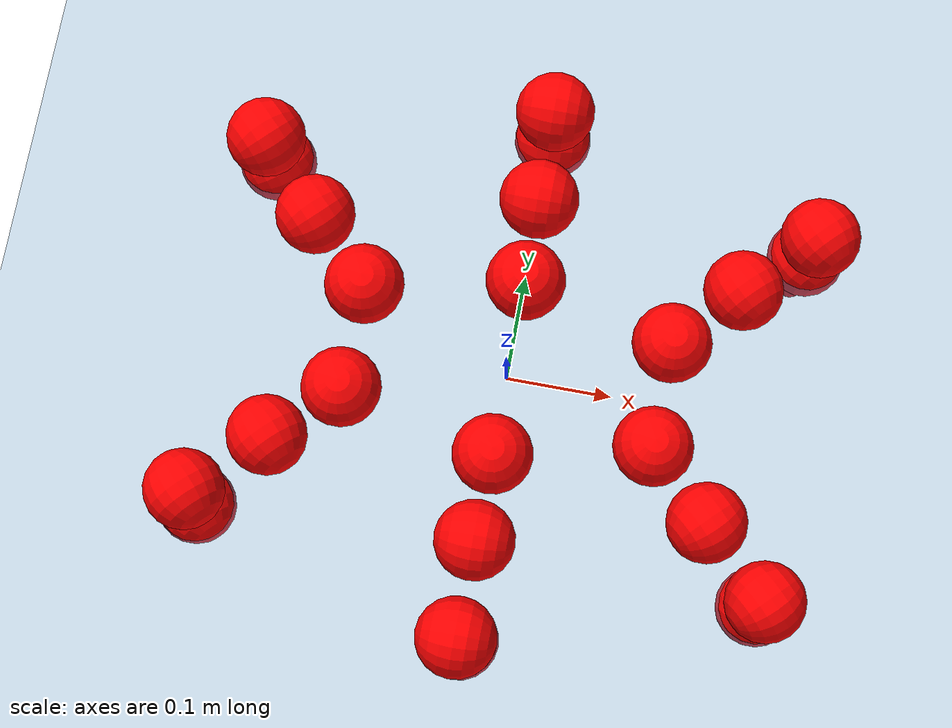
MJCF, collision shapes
<mujoco model="Golem">
  <compiler angle="radian" assetdir="assets" balanceinertia="true" inertiafromgeom="false"/>

  <option timestep="0.005" density="1.2" viscosity="2e-05"/>

  <size nkey="1"/>

  <visual>
    <quality shadowsize="8192"/>
    <map shadowclip="0.5"/>
  </visual>

  <default>
    <default class="/">
      <joint armature="0.01" damping="0.01" frictionloss="0.01"/>
      <geom contype="0" conaffinity="0" group="1" solref="-1000 -80"/>
      <site size="0.01 0.005 0.005" group="5"/>
      <general forcelimited="true" biastype="affine" gainprm="25" biasprm="0 -25 -0.5"/>
      <default class="visual">
        <geom type="mesh" group="2"/>
      </default>
      <default class="collision">
        <geom group="3"/>
      </default>
      <default class="foot">
        <geom size="0.01 0 0" condim="6" group="4" priority="1" solimp="0.015 1 0.01"/>
      </default>
      <default class="reward_collision_sphere">
        <geom group="5" rgba="1 0 0 1"/>
      </default>
    </default>
  </default>

  <asset>
    <texture type="skybox" colorspace="auto" name="//unnamed_texture_0" builtin="gradient" rgb1="0.95 0.95 0.95" rgb2="0.95 0.95 0.95" width="100" height="600"/>
    <texture type="2d" colorspace="auto" name="texplane" builtin="checker" rgb1="0.345 0.575 0.748" rgb2="0.345 0.575 0.748" markrgb="1 1 1" width="512" height="512"/>
    <material name="MatPlane" class="/" texture="texplane" texuniform="true" texrepeat="2 2" specular="0.9"/>
    <mesh name="body" class="/" file="body.stl" scale="0.001 0.001 0.001"/>
    <mesh name="coxa" class="/" file="coxa.stl" scale="0.001 0.001 0.001"/>
    <mesh name="femur" class="/" file="femur.stl" scale="0.001 0.001 0.001"/>
    <mesh name="tibia" class="/" file="tibia.stl" scale="0.001 0.001 0.001"/>
    <mesh name="tarsus" class="/" file="tarsus.stl" scale="0.001 0.001 0.001"/>
  </asset>

  <worldbody>
    <geom name="floor" class="/" size="100 100 0.125" type="plane" group="0" material="MatPlane"/>
    <light name="toplight_shadow" class="/" pos="0 0 5" dir="0.0990148 0.0990148 -0.990148" type="directional" ambient="0.04 0.04 0.04" diffuse="0.55 0.55 0.55" specular="0.12 0.12 0.12"/>
    <light name="toplight_fill" class="/" pos="0 0 5" dir="0.0990148 0.0990148 -0.990148" type="directional" castshadow="false" ambient="0.04 0.04 0.04" diffuse="0.3 0.3 0.3" specular="0.08 0.08 0.08"/>
    <body name="trunk" pos="9.64201e-05 0.00106273 -0.00207723" quat="0.999999 -0.000415957 -0.00040468 -0.00119485">
      <inertial pos="0.000843098 -0.000760654 -0.00185318" quat="0.999999 -0.00123803 -0.000547169 7.11291e-05" mass="2.80528" diaginertia="0.00639953 0.00360744 0.0123468"/>
      <joint name="//unnamed_joint_0" type="free"/>
      <geom name="//unnamed_geom_1" class="/" pos="0 0 0.0667498" quat="1 0 0 0" type="mesh" rgba="0.9 0.9 0.9 1" mesh="body"/>
      <site name="imu" class="/" pos="0.122595 0.013545 0.117024" size="0.00925652"/>
      <camera name="track" class="/" pos="0 -1.63987 0" quat="0.707107 0.707107 0 0" mode="trackcom"/>
      <camera name="ego_camera" class="/" pos="0.118827 0 0.104297" quat="-0.5 -0.5 0.5 0.5"/>
      <body name="coxa_RR" pos="-0.16399 -0.0679452 0.0684681" quat="0.381998 0.000966911 0.000145298 -0.924163">
        <inertial pos="0.00251197 -0.000298085 -0.00134361" quat="0.999995 0.00277543 0.00135496 0.000966227" mass="0.165537" diaginertia="0.0064829 0.00386785 0.012813"/>
        <joint name="coxa_joint_RR" class="/" pos="0 0 0" axis="-0.00233962 -0.00412941 -0.999989" range="-3.12786 3.14719" armature="0.00862586" damping="0" frictionloss="0.00931785"/>
        <geom name="//unnamed_geom_2" class="/" type="mesh" rgba="0.2 0.2 0.2 1" mesh="coxa"/>
        <geom name="//unnamed_geom_3" class="reward_collision_sphere" size="0.0370261" pos="-0.0274216 0 0"/>
        <body name="femur_RR" pos="0.0524094 -0.000828173 0.00174454" quat="0.500373 -0.500523 0.498841 0.500261">
          <inertial pos="-0.000283083 0.00256183 0.00141858" quat="0.999951 0.00635097 -0.00650405 0.00402869" mass="0.152835" diaginertia="0.00629669 0.00353817 0.0118861"/>
          <joint name="femur_joint_RR" class="/" pos="0 0 0" axis="0.0037784 -0.0018078 -0.999991" stiffness="0.000523284" range="-3.14537 3.14443" armature="0.010482" damping="0.00339285" frictionloss="0.00921064"/>
          <geom name="//unnamed_geom_4" class="/" type="mesh" rgba="0.9 0.9 0.9 1" mesh="femur"/>
          <geom name="//unnamed_geom_5" class="reward_collision_sphere" size="0.0370261"/>
          <body name="tibia_RR" pos="-0.0023109 -0.088041 -0.000378" quat="3.62657e-05 1 -0.000120697 -9.56624e-05">
            <inertial pos="-0.000261403 0.00282534 -0.00102021" quat="1 -0.000503859 -0.000312964 1.92135e-05" mass="0.152945" diaginertia="0.00617114 0.00357026 0.0120226"/>
            <joint name="tibia_joint_RR" class="/" pos="0 0 0" axis="-0.008828 -0.0115187 0.999895" range="-3.08523 3.11883" armature="0.00845004" damping="0.00581586" frictionloss="0.0103633"/>
            <geom name="//unnamed_geom_6" class="/" type="mesh" rgba="0.2 0.2 0.2 1" mesh="tibia"/>
            <geom name="//unnamed_geom_7" class="reward_collision_sphere" size="0.0370261"/>
            <body name="tarsus_RR" pos="0.0801075 0.00285815 -0.00244874" quat="1 -8.12336e-05 4.73806e-05 -0.00075018">
              <inertial pos="0.056063 0.00143902 0.00239971" quat="0.499842 0.495538 0.501477 0.50311" mass="0.152986" diaginertia="0.00607789 0.00360587 0.0122738"/>
              <joint name="tarsus_joint_RR" class="/" pos="0 0 0" axis="-0.007713 -0.00916089 0.999928" range="-3.17004 3.14635" armature="0.00935374" damping="0.0094918" frictionloss="0.00884552"/>
              <geom name="//unnamed_geom_8" class="/" type="mesh" rgba="0.9 0.9 0.9 1" mesh="tarsus"/>
              <geom name="foot_1" class="foot" size="0.00832849" pos="0.102374 0 0" quat="0 -0.707107 0 0.707107"/>
              <geom name="//unnamed_geom_10" class="reward_collision_sphere" size="0.0370261"/>
              <geom name="//unnamed_geom_11" class="reward_collision_sphere" size="0.0138848" pos="0.0982607 0 0"/>
              <site name="foot_1" class="foot" pos="0.102374 0 0" quat="0 -0.707107 0 0.707107" size="0.00925652"/>
            </body>
          </body>
        </body>
      </body>
      <body name="coxa_RM" pos="0.00225268 -0.111534 0.0691816" quat="0.70698 -0.000471598 -5.29077e-05 -0.707233">
        <inertial pos="-0.000342813 -5.1622e-05 -0.00254488" quat="0.999918 -0.00371472 -0.0114075 -0.00440327" mass="0.161256" diaginertia="0.00658609 0.00395232 0.0131362"/>
        <joint name="coxa_joint_RM" class="/" pos="0 0 0" axis="0.0110109 -0.000581183 -0.999939" range="-3.14154 3.11096" armature="0.00957995" damping="0.00944235" frictionloss="0.0102435"/>
        <geom name="//unnamed_geom_12" class="/" type="mesh" rgba="0.2 0.2 0.2 1" mesh="coxa"/>
        <geom name="//unnamed_geom_13" class="reward_collision_sphere" size="0.0370261" pos="-0.0274216 0 0"/>
        <body name="femur_RM" pos="0.0520251 -0.00144404 -0.000499513" quat="0.499605 -0.500276 0.500012 0.500107">
          <inertial pos="0.000380897 0.00224743 0.000293728" quat="0.999986 0.00520847 -0.000847632 0.00036641" mass="0.160895" diaginertia="0.00614004 0.00366852 0.0121254"/>
          <joint name="femur_joint_RM" class="/" pos="0 0 0" axis="0.00128412 -0.000185738 -0.999999" range="-3.08685 3.16189" armature="0.0103801" damping="0.0145105" frictionloss="0.0105343"/>
          <geom name="//unnamed_geom_14" class="/" type="mesh" rgba="0.9 0.9 0.9 1" mesh="femur"/>
          <geom name="//unnamed_geom_15" class="reward_collision_sphere" size="0.0370261"/>
          <body name="tibia_RM" pos="-0.000502472 -0.0880931 -0.00026812" quat="9.07179e-05 1 -0.000302296 -0.000446165">
            <inertial pos="-0.000110347 0.000253055 0.00260788" quat="0.999986 -0.00425167 -0.0027283 0.0015712" mass="0.164102" diaginertia="0.00634438 0.00370758 0.0121581"/>
            <joint name="tibia_joint_RM" class="/" pos="0 0 0" axis="-0.0118113 -0.00171788 0.999929" range="-3.1304 3.18475" armature="0.00799836" damping="0.0173097" frictionloss="0.0105231"/>
            <geom name="//unnamed_geom_16" class="/" type="mesh" rgba="0.2 0.2 0.2 1" mesh="tibia"/>
            <geom name="//unnamed_geom_17" class="reward_collision_sphere" size="0.0370261"/>
            <body name="tarsus_RM" pos="0.0778596 -0.00220496 -0.000542469" quat="0.999999 0.00107561 -0.000372394 -0.000297613">
              <inertial pos="0.055214 -0.000251978 0.000570772" quat="0.499516 0.498724 0.502313 0.49944" mass="0.169284" diaginertia="0.00659629 0.00383771 0.012817"/>
              <joint name="tarsus_joint_RM" class="/" pos="0 0 0" axis="0.0011237 -0.000607114 0.999999" range="-3.1373 3.15874" armature="0.00884806" damping="0.0130391" frictionloss="0.00882281"/>
              <geom name="//unnamed_geom_18" class="/" type="mesh" rgba="0.9 0.9 0.9 1" mesh="tarsus"/>
              <geom name="foot_2" class="foot" size="0.00856592" pos="0.102374 0 0" quat="0 -0.707107 0 0.707107"/>
              <geom name="//unnamed_geom_20" class="reward_collision_sphere" size="0.0370261"/>
              <geom name="//unnamed_geom_21" class="reward_collision_sphere" size="0.0138848" pos="0.0982607 0 0"/>
              <site name="foot_2" class="foot" pos="0.102374 0 0" quat="0 -0.707107 0 0.707107" size="0.00925652"/>
            </body>
          </body>
        </body>
      </body>
      <body name="coxa_RF" pos="0.163172 -0.0704627 0.0692871" quat="0.923841 -7.44363e-05 -6.33033e-05 -0.382778">
        <inertial pos="-0.00261552 -0.000332513 -0.00234766" quat="0.999952 -0.00344749 -0.00818238 -0.00404548" mass="0.157882" diaginertia="0.00657407 0.00377082 0.0128582"/>
        <joint name="coxa_joint_RF" class="/" pos="0 0 0" axis="-0.00494482 -0.00661688 -0.999966" range="-3.14633 3.09788" armature="0.00971436" damping="0.0212213" frictionloss="0.0105336"/>
        <geom name="//unnamed_geom_22" class="/" type="mesh" rgba="0.2 0.2 0.2 1" mesh="coxa"/>
        <geom name="//unnamed_geom_23" class="reward_collision_sphere" size="0.0370261" pos="-0.0274216 0 0"/>
        <body name="femur_RF" pos="0.0562962 -0.000817363 0.00127158" quat="0.499409 -0.50128 0.499594 0.499715">
          <inertial pos="-0.000805446 0.000472463 0.000881107" quat="0.999973 -0.000264723 0.00616489 0.00399235" mass="0.159541" diaginertia="0.00626669 0.0036523 0.0120444"/>
          <joint name="femur_joint_RF" class="/" pos="0 0 0" axis="0.000392327 0.000401612 -1" range="-3.12265 3.13227" armature="0.00920143" damping="0.0111146" frictionloss="0.00887665"/>
          <geom name="//unnamed_geom_24" class="/" type="mesh" rgba="0.9 0.9 0.9 1" mesh="femur"/>
          <geom name="//unnamed_geom_25" class="reward_collision_sphere" size="0.0370261"/>
          <body name="tibia_RF" pos="0.00264329 -0.0867902 0.00180829" quat="8.48013e-05 1 6.80775e-05 3.30313e-05">
            <inertial pos="0.000621902 -0.00258833 -0.00266478" quat="0.999905 0.00945973 0.00166796 -0.00992419" mass="0.155124" diaginertia="0.00618453 0.00363945 0.0123585"/>
            <joint name="tibia_joint_RF" class="/" pos="0 0 0" axis="-0.00165502 -0.0123477 0.999922" stiffness="0.00818184" range="-3.16208 3.14228" armature="0.00940994" damping="0.00907971" frictionloss="0.00842686"/>
            <geom name="//unnamed_geom_26" class="/" type="mesh" rgba="0.2 0.2 0.2 1" mesh="tibia"/>
            <geom name="//unnamed_geom_27" class="reward_collision_sphere" size="0.0370261"/>
            <body name="tarsus_RF" pos="0.0784878 -0.000834448 -0.00171068" quat="1 -1.72167e-05 2.48381e-05 -2.16763e-05">
              <inertial pos="0.0537114 -0.000998055 0.000633793" quat="0.499922 0.500008 0.500083 0.499987" mass="0.156813" diaginertia="0.00623318 0.00353759 0.0120367"/>
              <joint name="tarsus_joint_RF" class="/" pos="0 0 0" axis="-0.013587 0.00641918 0.999887" stiffness="0.00320452" range="-3.12116 3.16012" armature="0.00941398" damping="0" frictionloss="0.00999901"/>
              <geom name="//unnamed_geom_28" class="/" type="mesh" rgba="0.9 0.9 0.9 1" mesh="tarsus"/>
              <geom name="foot_3" class="foot" size="0.00940965" pos="0.102374 0 0" quat="0 -0.707107 0 0.707107"/>
              <geom name="//unnamed_geom_30" class="reward_collision_sphere" size="0.0370261"/>
              <geom name="//unnamed_geom_31" class="reward_collision_sphere" size="0.0138848" pos="0.0982607 0 0"/>
              <site name="foot_3" class="foot" pos="0.102374 0 0" quat="0 -0.707107 0 0.707107" size="0.00925652"/>
            </body>
          </body>
        </body>
      </body>
      <body name="coxa_LR" pos="-0.161956 0.0689475 0.0703069" quat="0.383886 -0.000495369 -0.000401154 0.92338">
        <inertial pos="-0.0010377 0.00245849 -0.00246952" quat="0.999986 -0.0030775 -0.00044161 -0.00420561" mass="0.156438" diaginertia="0.00632286 0.00355576 0.0121968"/>
        <joint name="coxa_joint_LR" class="/" pos="0 0 0" axis="-0.00696461 0.0147665 -0.999867" stiffness="0.00319592" range="-3.15586 3.19451" armature="0.00930794" damping="0.0138753" frictionloss="0.0103638"/>
        <geom name="//unnamed_geom_32" class="/" type="mesh" rgba="0.2 0.2 0.2 1" mesh="coxa"/>
        <geom name="//unnamed_geom_33" class="reward_collision_sphere" size="0.0370261" pos="-0.0274216 0 0"/>
        <body name="femur_LR" pos="0.0532324 0.000789435 0.00133499" quat="0.499896 -0.500045 0.500008 0.500051">
          <inertial pos="-0.000840086 0.00231043 -0.000210357" quat="0.999909 0.00212228 0.00762736 -0.0109094" mass="0.158593" diaginertia="0.00665465 0.00376529 0.0121512"/>
          <joint name="femur_joint_LR" class="/" pos="0 0 0" axis="0.00641642 0.0105085 0.999924" range="-3.16092 3.14497" armature="0.0103291" damping="0.00486486" frictionloss="0.0095139"/>
          <geom name="//unnamed_geom_34" class="/" type="mesh" rgba="0.9 0.9 0.9 1" mesh="femur"/>
          <geom name="//unnamed_geom_35" class="reward_collision_sphere" size="0.0370261"/>
          <body name="tibia_LR" pos="0.00176625 -0.0889792 -0.00330392" quat="6.05496e-08 1 1.27632e-06 2.32793e-07">
            <inertial pos="-0.00140035 -3.78517e-05 0.00270916" quat="0.999934 -0.00100591 0.0104051 -0.00470788" mass="0.162154" diaginertia="0.00622159 0.00370219 0.0121184"/>
            <joint name="tibia_joint_LR" class="/" pos="0 0 0" axis="0.000558287 0.00113562 -0.999999" range="-3.08649 3.18769" armature="0.00795098" damping="0" frictionloss="0.00926621"/>
            <geom name="//unnamed_geom_36" class="/" type="mesh" rgba="0.2 0.2 0.2 1" mesh="tibia"/>
            <geom name="//unnamed_geom_37" class="reward_collision_sphere" size="0.0370261"/>
            <body name="tarsus_LR" pos="0.079698 -0.000430343 0.0020703" quat="1 -3.22234e-05 -1.99351e-06 -5.30342e-05">
              <inertial pos="0.0554525 -0.00251774 -0.00109263" quat="0.499514 0.500017 0.500249 0.50022" mass="0.153476" diaginertia="0.00638605 0.00382541 0.0125863"/>
              <joint name="tarsus_joint_LR" class="/" pos="0 0 0" axis="-8.53123e-06 2.35837e-05 -1" range="-3.12005 3.17708" armature="0.00941455" damping="0.00318636" frictionloss="0.00843259"/>
              <geom name="//unnamed_geom_38" class="/" type="mesh" rgba="0.9 0.9 0.9 1" mesh="tarsus"/>
              <geom name="foot_4" class="foot" size="0.00988857" pos="0.102374 0 0" quat="0.707107 0 -0.707107 0"/>
              <geom name="//unnamed_geom_40" class="reward_collision_sphere" size="0.0370261"/>
              <geom name="//unnamed_geom_41" class="reward_collision_sphere" size="0.0138848" pos="0.0982607 0 0"/>
              <site name="foot_4" class="foot" pos="0.102374 0 0" quat="0.707107 0 -0.707107 0" size="0.00925652"/>
            </body>
          </body>
        </body>
      </body>
      <body name="coxa_LM" pos="0.00273369 0.10738 0.0697571" quat="0.707233 -5.74133e-05 -0.000614828 0.70698">
        <inertial pos="0.000720247 0.000321253 -0.00235" quat="0.999986 0.00222043 -0.00303622 -0.00383732" mass="0.156589" diaginertia="0.0064023 0.00366167 0.012295"/>
        <joint name="coxa_joint_LM" class="/" pos="0 0 0" axis="-0.00514998 0.00722511 -0.999961" range="-3.11756 3.13182" armature="0.00918797" damping="0.00275058" frictionloss="0.00932657"/>
        <geom name="//unnamed_geom_42" class="/" type="mesh" rgba="0.2 0.2 0.2 1" mesh="coxa"/>
        <geom name="//unnamed_geom_43" class="reward_collision_sphere" size="0.0370261" pos="-0.0274216 0 0"/>
        <body name="femur_LM" pos="0.051136 0.00166508 0.000342848" quat="0.500322 -0.499906 0.499987 0.499785">
          <inertial pos="-0.00238306 -0.000667971 -0.00256618" quat="0.999922 0.0113268 -0.00433282 -0.0029099" mass="0.154718" diaginertia="0.00629904 0.00362265 0.0122687"/>
          <joint name="femur_joint_LM" class="/" pos="0 0 0" axis="0.00306905 -0.00427039 0.999986" range="-3.1564 3.08763" armature="0.00847072" damping="0" frictionloss="0.00800013"/>
          <geom name="//unnamed_geom_44" class="/" type="mesh" rgba="0.9 0.9 0.9 1" mesh="femur"/>
          <geom name="//unnamed_geom_45" class="reward_collision_sphere" size="0.0370261"/>
          <body name="tibia_LM" pos="-0.00036183 -0.0860858 0.000405679" quat="0.000149108 1 -0.00052021 0.000248717">
            <inertial pos="0.000864863 -0.000606954 0.000230994" quat="0.999986 -0.00405141 0.0033992 -0.0008166" mass="0.156909" diaginertia="0.00618321 0.00360088 0.0120086"/>
            <joint name="tibia_joint_LM" class="/" pos="0 0 0" axis="0.0146408 -0.000440107 -0.999893" range="-3.08684 3.11275" armature="0.0102834" damping="0" frictionloss="0.0104857"/>
            <geom name="//unnamed_geom_46" class="/" type="mesh" rgba="0.2 0.2 0.2 1" mesh="tibia"/>
            <geom name="//unnamed_geom_47" class="reward_collision_sphere" size="0.0370261"/>
            <body name="tarsus_LM" pos="0.0792308 -0.000948006 -0.000492039" quat="1 -1.63427e-05 -2.86808e-05 -3.06286e-07">
              <inertial pos="0.0538998 -0.00235745 0.00051326" quat="0.503986 0.497752 0.496005 0.502214" mass="0.152798" diaginertia="0.00624487 0.00349095 0.011965"/>
              <joint name="tarsus_joint_LM" class="/" pos="0 0 0" axis="0.0030744 -0.00811549 -0.999962" stiffness="0.0132848" range="-3.14202 3.13978" armature="0.0096238" damping="0.022234" frictionloss="0.0104575"/>
              <geom name="//unnamed_geom_48" class="/" type="mesh" rgba="0.9 0.9 0.9 1" mesh="tarsus"/>
              <geom name="foot_5" class="foot" size="0.00998399" pos="0.102374 0 0" quat="0.707107 0 -0.707107 0"/>
              <geom name="//unnamed_geom_50" class="reward_collision_sphere" size="0.0370261"/>
              <geom name="//unnamed_geom_51" class="reward_collision_sphere" size="0.0138848" pos="0.0982607 0 0"/>
              <site name="foot_5" class="foot" pos="0.102374 0 0" quat="0.707107 0 -0.707107 0" size="0.00925652"/>
            </body>
          </body>
        </body>
      </body>
      <body name="coxa_LF" pos="0.164319 0.0662158 0.0673811" quat="0.923879 -3.99187e-05 6.41897e-05 0.382685">
        <inertial pos="-0.00256089 -0.00236656 -0.00217378" quat="0.999997 -0.00111619 -4.25284e-05 -0.00215471" mass="0.152364" diaginertia="0.00616398 0.00347282 0.0123181"/>
        <joint name="coxa_joint_LF" class="/" pos="0 0 0" axis="0.00838654 -0.00589828 -0.999947" range="-3.17185 3.13634" armature="0.00927632" damping="0.00714714" frictionloss="0.00808976"/>
        <geom name="//unnamed_geom_52" class="/" type="mesh" rgba="0.2 0.2 0.2 1" mesh="coxa"/>
        <geom name="//unnamed_geom_53" class="reward_collision_sphere" size="0.0370261" pos="-0.0274216 0 0"/>
        <body name="femur_LF" pos="0.0550763 0.00284736 0.00102213" quat="0.499512 -0.500123 0.500841 0.499522">
          <inertial pos="-0.000377348 -0.00188768 -0.000542332" quat="1 4.86336e-05 -0.000857183 0.000467392" mass="0.152465" diaginertia="0.00595484 0.00357255 0.0119313"/>
          <joint name="femur_joint_LF" class="/" pos="0 0 0" axis="-0.00560286 -0.0144258 0.99988" range="-3.16062 3.19118" armature="0.00878705" damping="0.00818329" frictionloss="0.00900047"/>
          <geom name="//unnamed_geom_54" class="/" type="mesh" rgba="0.9 0.9 0.9 1" mesh="femur"/>
          <geom name="//unnamed_geom_55" class="reward_collision_sphere" size="0.0370261"/>
          <body name="tibia_LF" pos="-0.000449295 -0.0879159 -4.56581e-05" quat="0.000510364 1 -0.000165815 -0.000531822">
            <inertial pos="0.00179098 0.00291309 -0.00130189" quat="0.999999 -8.45049e-05 0.000403559 0.000925423" mass="0.164226" diaginertia="0.00626621 0.0037254 0.0121927"/>
            <joint name="tibia_joint_LF" class="/" pos="0 0 0" axis="0.00664656 0.00731351 -0.999951" range="-3.1434 3.08704" armature="0.0091682" damping="0.00606315" frictionloss="0.00896265"/>
            <geom name="//unnamed_geom_56" class="/" type="mesh" rgba="0.2 0.2 0.2 1" mesh="tibia"/>
            <geom name="//unnamed_geom_57" class="reward_collision_sphere" size="0.0370261"/>
            <body name="tarsus_LF" pos="0.079975 1.27171e-05 -0.0031572" quat="1 2.62106e-06 -3.73723e-05 -2.1399e-06">
              <inertial pos="0.0535308 -0.000406052 0.000789962" quat="0.498661 0.494137 0.49736 0.509705" mass="0.158255" diaginertia="0.00638924 0.00373369 0.0124971"/>
              <joint name="tarsus_joint_LF" class="/" pos="0 0 0" axis="-0.00933229 0.00158385 -0.999955" stiffness="0.0284376" range="-3.11876 3.09169" armature="0.00906171" damping="0.0369532" frictionloss="0.00882921"/>
              <geom name="//unnamed_geom_58" class="/" type="mesh" rgba="0.9 0.9 0.9 1" mesh="tarsus"/>
              <geom name="foot_6" class="foot" size="0.00902327" pos="0.102374 0 0" quat="0.707107 0 -0.707107 0"/>
              <geom name="//unnamed_geom_60" class="reward_collision_sphere" size="0.0370261"/>
              <geom name="//unnamed_geom_61" class="reward_collision_sphere" size="0.0138848" pos="0.0982607 0 0"/>
              <site name="foot_6" class="foot" pos="0.102374 0 0" quat="0.707107 0 -0.707107 0" size="0.00925652"/>
            </body>
          </body>
        </body>
      </body>
    </body>
  </worldbody>

  <contact>
    <pair class="/" geom1="floor" geom2="foot_1" name="//unnamed_contact_0"/>
    <pair class="/" geom1="floor" geom2="foot_2" name="//unnamed_contact_1"/>
    <pair class="/" geom1="floor" geom2="foot_3" name="//unnamed_contact_2"/>
    <pair class="/" geom1="floor" geom2="foot_4" name="//unnamed_contact_3"/>
    <pair class="/" geom1="floor" geom2="foot_5" name="//unnamed_contact_4"/>
    <pair class="/" geom1="floor" geom2="foot_6" name="//unnamed_contact_5"/>
  </contact>

  <actuator>
    <general name="coxa_joint_RR" class="/" joint="coxa_joint_RR" forcerange="-6.72453 6.72453" gainprm="22.5856" biasprm="0 -22.5856 -0.481632"/>
    <general name="femur_joint_RR" class="/" joint="femur_joint_RR" forcerange="-6.58716 6.58716" gainprm="22.5856" biasprm="0 -22.5856 -0.481632"/>
    <general name="tibia_joint_RR" class="/" joint="tibia_joint_RR" forcerange="-6.80251 6.80251" gainprm="22.5856" biasprm="0 -22.5856 -0.481632"/>
    <general name="tarsus_joint_RR" class="/" joint="tarsus_joint_RR" forcerange="-7.43207 7.43207" gainprm="22.5856" biasprm="0 -22.5856 -0.481632"/>
    <general name="coxa_joint_RM" class="/" joint="coxa_joint_RM" forcerange="-6.67774 6.67774" gainprm="22.5856" biasprm="0 -22.5856 -0.481632"/>
    <general name="femur_joint_RM" class="/" joint="femur_joint_RM" forcerange="-7.43463 7.43463" gainprm="22.5856" biasprm="0 -22.5856 -0.481632"/>
    <general name="tibia_joint_RM" class="/" joint="tibia_joint_RM" forcerange="-6.63108 6.63108" gainprm="22.5856" biasprm="0 -22.5856 -0.481632"/>
    <general name="tarsus_joint_RM" class="/" joint="tarsus_joint_RM" forcerange="-6.90878 6.90878" gainprm="22.5856" biasprm="0 -22.5856 -0.481632"/>
    <general name="coxa_joint_RF" class="/" joint="coxa_joint_RF" forcerange="-6.08525 6.08525" gainprm="22.5856" biasprm="0 -22.5856 -0.481632"/>
    <general name="femur_joint_RF" class="/" joint="femur_joint_RF" forcerange="-6.5122 6.5122" gainprm="22.5856" biasprm="0 -22.5856 -0.481632"/>
    <general name="tibia_joint_RF" class="/" joint="tibia_joint_RF" forcerange="-6.75345 6.75345" gainprm="22.5856" biasprm="0 -22.5856 -0.481632"/>
    <general name="tarsus_joint_RF" class="/" joint="tarsus_joint_RF" forcerange="-6.48703 6.48703" gainprm="22.5856" biasprm="0 -22.5856 -0.481632"/>
    <general name="coxa_joint_LR" class="/" joint="coxa_joint_LR" forcerange="-6.79356 6.79356" gainprm="22.5856" biasprm="0 -22.5856 -0.481632"/>
    <general name="femur_joint_LR" class="/" joint="femur_joint_LR" forcerange="-6.70745 6.70745" gainprm="22.5856" biasprm="0 -22.5856 -0.481632"/>
    <general name="tibia_joint_LR" class="/" joint="tibia_joint_LR" forcerange="-6.90189 6.90189" gainprm="22.5856" biasprm="0 -22.5856 -0.481632"/>
    <general name="tarsus_joint_LR" class="/" joint="tarsus_joint_LR" forcerange="-6.82213 6.82213" gainprm="22.5856" biasprm="0 -22.5856 -0.481632"/>
    <general name="coxa_joint_LM" class="/" joint="coxa_joint_LM" forcerange="-7.01076 7.01076" gainprm="22.5856" biasprm="0 -22.5856 -0.481632"/>
    <general name="femur_joint_LM" class="/" joint="femur_joint_LM" forcerange="-7.02798 7.02798" gainprm="22.5856" biasprm="0 -22.5856 -0.481632"/>
    <general name="tibia_joint_LM" class="/" joint="tibia_joint_LM" forcerange="-6.71941 6.71941" gainprm="22.5856" biasprm="0 -22.5856 -0.481632"/>
    <general name="tarsus_joint_LM" class="/" joint="tarsus_joint_LM" forcerange="-6.86728 6.86728" gainprm="22.5856" biasprm="0 -22.5856 -0.481632"/>
    <general name="coxa_joint_LF" class="/" joint="coxa_joint_LF" forcerange="-6.41322 6.41322" gainprm="22.5856" biasprm="0 -22.5856 -0.481632"/>
    <general name="femur_joint_LF" class="/" joint="femur_joint_LF" forcerange="-6.759 6.759" gainprm="22.5856" biasprm="0 -22.5856 -0.481632"/>
    <general name="tibia_joint_LF" class="/" joint="tibia_joint_LF" forcerange="-6.73927 6.73927" gainprm="22.5856" biasprm="0 -22.5856 -0.481632"/>
    <general name="tarsus_joint_LF" class="/" joint="tarsus_joint_LF" forcerange="-6.67161 6.67161" gainprm="22.5856" biasprm="0 -22.5856 -0.481632"/>
  </actuator>

  <sensor>
    <gyro site="imu" name="imu_angular_velocity"/>
    <velocimeter site="imu" name="imu_linear_velocity"/>
    <framelinvel objtype="site" objname="foot_1" name="foot_1_global_linear_velocity"/>
    <framelinvel objtype="site" objname="foot_2" name="foot_2_global_linear_velocity"/>
    <framelinvel objtype="site" objname="foot_3" name="foot_3_global_linear_velocity"/>
    <framelinvel objtype="site" objname="foot_4" name="foot_4_global_linear_velocity"/>
    <framelinvel objtype="site" objname="foot_5" name="foot_5_global_linear_velocity"/>
    <framelinvel objtype="site" objname="foot_6" name="foot_6_global_linear_velocity"/>
  </sensor>

  <keyframe>
    <key name="home" qpos="0 0 0.1457 1 0 0 0 0 0 0 0 0 0 0 0 0 0 0 0 0 0 0 0 0 0 0 0 0 0 0 0"/>
  </keyframe>
</mujoco>
